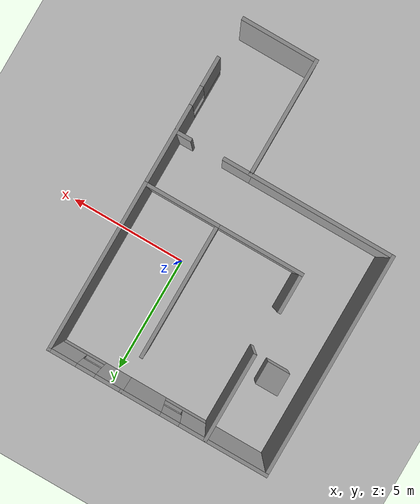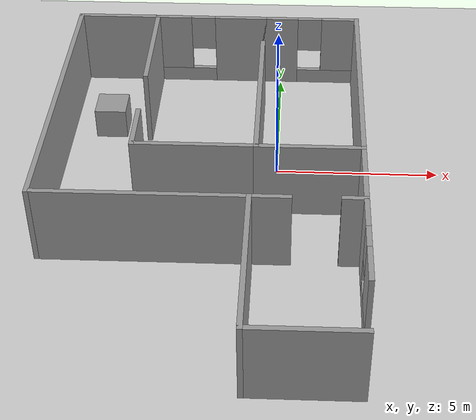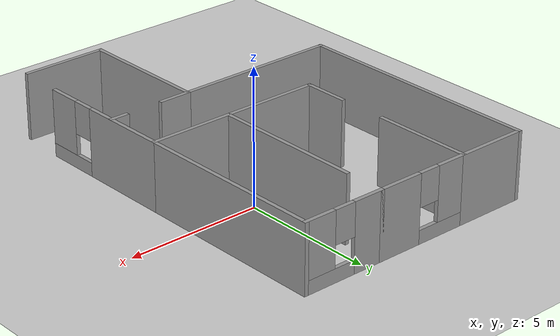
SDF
<sdf version='1.6'>
  <world name='default'>
      <plugin name='ardupilot_sitl_gazebo_plugin' filename='libardupilot_sitl_gazebo_plugin_rover.so'>
      <UAV_MODEL>rover</UAV_MODEL>
    </plugin>
    <light name='sun' type='directional'>
      <cast_shadows>1</cast_shadows>
      <pose frame=''>0 0 10 0 -0 0</pose>
      <diffuse>0.8 0.8 0.8 1</diffuse>
      <specular>0.2 0.2 0.2 1</specular>
      <attenuation>
        <range>1000</range>
        <constant>0.9</constant>
        <linear>0.01</linear>
        <quadratic>0.001</quadratic>
      </attenuation>
      <direction>-0.5 0.1 -0.9</direction>
    </light>
    <model name='ground_plane'>
      <static>1</static>
      <link name='link'>
        <collision name='collision'>
          <geometry>
            <plane>
              <normal>0 0 1</normal>
              <size>100 100</size>
            </plane>
          </geometry>
          <surface>
            <friction>
              <ode>
                <mu>100</mu>
                <mu2>50</mu2>
              </ode>
              <torsional>
                <ode/>
              </torsional>
            </friction>
            <contact>
              <ode/>
            </contact>
            <bounce/>
          </surface>
          <max_contacts>10</max_contacts>
        </collision>
        <visual name='visual'>
          <cast_shadows>0</cast_shadows>
          <geometry>
            <plane>
              <normal>0 0 1</normal>
              <size>100 100</size>
            </plane>
          </geometry>
          <material>
            <script>
              <uri>file://media/materials/scripts/gazebo.material</uri>
              <name>Gazebo/Grey</name>
            </script>
          </material>
        </visual>
        <self_collide>0</self_collide>
        <kinematic>0</kinematic>
      </link>
    </model>
    <gravity>0 0 -9.8</gravity>
    <magnetic_field>6e-06 2.3e-05 -4.2e-05</magnetic_field>
    <atmosphere type='adiabatic'/>
    <physics name='default_physics' default='0' type='ode'>
      <max_step_size>0.001</max_step_size>
      <real_time_factor>1</real_time_factor>
      <real_time_update_rate>1000</real_time_update_rate>
    </physics>
    <scene>
      <ambient>0.4 0.4 0.4 1</ambient>
      <background>0.7 0.7 0.7 1</background>
      <shadows>1</shadows>
    </scene>
    <spherical_coordinates>
      <surface_model>EARTH_WGS84</surface_model>
      <latitude_deg>0</latitude_deg>
      <longitude_deg>0</longitude_deg>
      <elevation>0</elevation>
      <heading_deg>0</heading_deg>
    </spherical_coordinates>

    <gui fullscreen='0'>
      <camera name='user_camera'>
        <pose frame=''>-1.46233 -2.64601 20.7279 -0 1.3978 1.38277</pose>
        <view_controller>orbit</view_controller>
        <projection_type>perspective</projection_type>
      </camera>
    </gui>
    <light name='user_spot_light_0' type='spot'>
      <pose frame=''>-0.306586 0.227094 1 0 -0 0</pose>
      <diffuse>0.5 0.5 0.5 1</diffuse>
      <specular>0.1 0.1 0.1 1</specular>
      <direction>0 0 -1</direction>
      <attenuation>
        <range>20</range>
        <constant>0.5</constant>
        <linear>0.01</linear>
        <quadratic>0.001</quadratic>
      </attenuation>
      <cast_shadows>0</cast_shadows>
      <spot>
        <inner_angle>0.6</inner_angle>
        <outer_angle>1</outer_angle>
        <falloff>1</falloff>
      </spot>
    </light>
    <model name='small_building'>
      <pose frame=''>-2.13424 -1.93193 0 0 -0 1.570796</pose>
      <link name='Wall_14'>
        <pose frame=''>7.1 -3.1 0 0 0 -1.5708</pose>
        <visual name='Wall_14_Visual_0'>
          <pose frame=''>-1.01794 0 1.25 0 -0 0</pose>
          <geometry>
            <box>
              <size>1.21412 0.15 2.5</size>
            </box>
          </geometry>
          <material>
            <script>
              <uri>file://media/materials/scripts/gazebo.material</uri>
              <name>Gazebo/Grey</name>
            </script>
            <ambient>1 1 1 1</ambient>
          </material>
          <meta>
            <layer>0</layer>
          </meta>
        </visual>
        <collision name='Wall_14_Collision_0'>
          <geometry>
            <box>
              <size>1.21412 0.15 2.5</size>
            </box>
          </geometry>
          <pose frame=''>-1.01794 0 1.25 0 -0 0</pose>
          <max_contacts>10</max_contacts>
          <surface>
            <contact>
              <ode/>
            </contact>
            <bounce/>
            <friction>
              <torsional>
                <ode/>
              </torsional>
              <ode/>
            </friction>
          </surface>
        </collision>
        <visual name='Wall_14_Visual_1'>
          <pose frame=''>0.607063 0 0.25 0 -0 0</pose>
          <geometry>
            <box>
              <size>2.03587 0.15 0.5</size>
            </box>
          </geometry>
          <material>
            <script>
              <uri>file://media/materials/scripts/gazebo.material</uri>
              <name>Gazebo/Grey</name>
            </script>
            <ambient>1 1 1 1</ambient>
          </material>
          <meta>
            <layer>0</layer>
          </meta>
        </visual>
        <collision name='Wall_14_Collision_1'>
          <geometry>
            <box>
              <size>2.03587 0.15 0.5</size>
            </box>
          </geometry>
          <pose frame=''>0.607063 0 0.25 0 -0 0</pose>
          <max_contacts>10</max_contacts>
          <surface>
            <contact>
              <ode/>
            </contact>
            <bounce/>
            <friction>
              <torsional>
                <ode/>
              </torsional>
              <ode/>
            </friction>
          </surface>
        </collision>
        <visual name='Wall_14_Visual_2'>
          <pose frame=''>1.00706 0 1.5 0 -0 0</pose>
          <geometry>
            <box>
              <size>1.23588 0.15 2</size>
            </box>
          </geometry>
          <material>
            <script>
              <uri>file://media/materials/scripts/gazebo.material</uri>
              <name>Gazebo/Grey</name>
            </script>
            <ambient>1 1 1 1</ambient>
          </material>
          <meta>
            <layer>0</layer>
          </meta>
        </visual>
        <collision name='Wall_14_Collision_2'>
          <geometry>
            <box>
              <size>1.23588 0.15 2</size>
            </box>
          </geometry>
          <pose frame=''>1.00706 0 1.5 0 -0 0</pose>
          <max_contacts>10</max_contacts>
          <surface>
            <contact>
              <ode/>
            </contact>
            <bounce/>
            <friction>
              <torsional>
                <ode/>
              </torsional>
              <ode/>
            </friction>
          </surface>
        </collision>
        <visual name='Wall_14_Visual_3'>
          <pose frame=''>-0.010875 0 1.9 0 -0 0</pose>
          <geometry>
            <box>
              <size>0.8 0.15 1.2</size>
            </box>
          </geometry>
          <material>
            <script>
              <uri>file://media/materials/scripts/gazebo.material</uri>
              <name>Gazebo/Grey</name>
            </script>
            <ambient>1 1 1 1</ambient>
          </material>
          <meta>
            <layer>0</layer>
          </meta>
        </visual>
        <collision name='Wall_14_Collision_3'>
          <geometry>
            <box>
              <size>0.8 0.15 1.2</size>
            </box>
          </geometry>
          <pose frame=''>-0.010875 0 1.9 0 -0 0</pose>
          <max_contacts>10</max_contacts>
          <surface>
            <contact>
              <ode/>
            </contact>
            <bounce/>
            <friction>
              <torsional>
                <ode/>
              </torsional>
              <ode/>
            </friction>
          </surface>
        </collision>
        <self_collide>0</self_collide>
        <kinematic>0</kinematic>
      </link>
      <link name='Wall_15'>
        <collision name='Wall_15_Collision'>
          <geometry>
            <box>
              <size>7.25 0.15 2.5</size>
            </box>
          </geometry>
          <pose frame=''>0 0 1.25 0 -0 0</pose>
          <max_contacts>10</max_contacts>
          <surface>
            <contact>
              <ode/>
            </contact>
            <bounce/>
            <friction>
              <torsional>
                <ode/>
              </torsional>
              <ode/>
            </friction>
          </surface>
        </collision>
        <visual name='Wall_15_Visual'>
          <pose frame=''>0 0 1.25 0 -0 0</pose>
          <geometry>
            <box>
              <size>7.25 0.15 2.5</size>
            </box>
          </geometry>
          <material>
            <script>
              <uri>file://media/materials/scripts/gazebo.material</uri>
              <name>Gazebo/Grey</name>
            </script>
            <ambient>1 1 1 1</ambient>
          </material>
          <meta>
            <layer>0</layer>
          </meta>
        </visual>
        <pose frame=''>3.55 -4.65 0 0 -0 3.14159</pose>
        <self_collide>0</self_collide>
        <kinematic>0</kinematic>
      </link>
      <link name='Wall_16'>
        <collision name='Wall_16_Collision'>
          <geometry>
            <box>
              <size>3.25 0.15 2.5</size>
            </box>
          </geometry>
          <pose frame=''>0 0 1.25 0 -0 0</pose>
          <max_contacts>10</max_contacts>
          <surface>
            <contact>
              <ode/>
            </contact>
            <bounce/>
            <friction>
              <torsional>
                <ode/>
              </torsional>
              <ode/>
            </friction>
          </surface>
        </collision>
        <visual name='Wall_16_Visual'>
          <pose frame=''>0 0 1.25 0 -0 0</pose>
          <geometry>
            <box>
              <size>3.25 0.15 2.5</size>
            </box>
          </geometry>
          <material>
            <script>
              <uri>file://media/materials/scripts/gazebo.material</uri>
              <name>Gazebo/Grey</name>
            </script>
            <ambient>1 1 1 1</ambient>
          </material>
          <meta>
            <layer>0</layer>
          </meta>
        </visual>
        <pose frame=''>-0 -3.1 0 0 -0 1.5708</pose>
        <self_collide>0</self_collide>
        <kinematic>0</kinematic>
      </link>
      <link name='Wall_17'>
        <collision name='Wall_17_Collision'>
          <geometry>
            <box>
              <size>5.75 0.15 2.5</size>
            </box>
          </geometry>
          <pose frame=''>0 0 1.25 0 -0 0</pose>
          <max_contacts>10</max_contacts>
          <surface>
            <contact>
              <ode/>
            </contact>
            <bounce/>
            <friction>
              <torsional>
                <ode/>
              </torsional>
              <ode/>
            </friction>
          </surface>
        </collision>
        <visual name='Wall_17_Visual'>
          <pose frame=''>0 0 1.25 0 -0 0</pose>
          <geometry>
            <box>
              <size>5.75 0.15 2.5</size>
            </box>
          </geometry>
          <material>
            <script>
              <uri>file://media/materials/scripts/gazebo.material</uri>
              <name>Gazebo/Grey</name>
            </script>
            <ambient>1 1 1 1</ambient>
          </material>
          <meta>
            <layer>0</layer>
          </meta>
        </visual>
        <pose frame=''>2.8 -1.55 0 0 -0 0</pose>
        <self_collide>0</self_collide>
        <kinematic>0</kinematic>
      </link>
      <link name='Wall_19'>
        <pose frame=''>7.1 0.25 0 0 -0 1.5708</pose>
        <visual name='Wall_19_Visual_0'>
          <pose frame=''>-1.00559 0 1.25 0 -0 0</pose>
          <geometry>
            <box>
              <size>1.73883 0.15 2.5</size>
            </box>
          </geometry>
          <material>
            <script>
              <uri>file://media/materials/scripts/gazebo.material</uri>
              <name>Gazebo/Grey</name>
            </script>
            <ambient>1 1 1 1</ambient>
          </material>
          <meta>
            <layer>0</layer>
          </meta>
        </visual>
        <collision name='Wall_19_Collision_0'>
          <geometry>
            <box>
              <size>1.73883 0.15 2.5</size>
            </box>
          </geometry>
          <pose frame=''>-1.00559 0 1.25 0 -0 0</pose>
          <max_contacts>10</max_contacts>
          <surface>
            <contact>
              <ode/>
            </contact>
            <bounce/>
            <friction>
              <torsional>
                <ode/>
              </torsional>
              <ode/>
            </friction>
          </surface>
        </collision>
        <visual name='Wall_19_Visual_1'>
          <pose frame=''>0.869414 0 0.25 0 -0 0</pose>
          <geometry>
            <box>
              <size>2.01117 0.15 0.5</size>
            </box>
          </geometry>
          <material>
            <script>
              <uri>file://media/materials/scripts/gazebo.material</uri>
              <name>Gazebo/Grey</name>
            </script>
            <ambient>1 1 1 1</ambient>
          </material>
          <meta>
            <layer>0</layer>
          </meta>
        </visual>
        <collision name='Wall_19_Collision_1'>
          <geometry>
            <box>
              <size>2.01117 0.15 0.5</size>
            </box>
          </geometry>
          <pose frame=''>0.869414 0 0.25 0 -0 0</pose>
          <max_contacts>10</max_contacts>
          <surface>
            <contact>
              <ode/>
            </contact>
            <bounce/>
            <friction>
              <torsional>
                <ode/>
              </torsional>
              <ode/>
            </friction>
          </surface>
        </collision>
        <visual name='Wall_19_Visual_2'>
          <pose frame=''>1.26941 0 1.5 0 -0 0</pose>
          <geometry>
            <box>
              <size>1.21117 0.15 2</size>
            </box>
          </geometry>
          <material>
            <script>
              <uri>file://media/materials/scripts/gazebo.material</uri>
              <name>Gazebo/Grey</name>
            </script>
            <ambient>1 1 1 1</ambient>
          </material>
          <meta>
            <layer>0</layer>
          </meta>
        </visual>
        <collision name='Wall_19_Collision_2'>
          <geometry>
            <box>
              <size>1.21117 0.15 2</size>
            </box>
          </geometry>
          <pose frame=''>1.26941 0 1.5 0 -0 0</pose>
          <max_contacts>10</max_contacts>
          <surface>
            <contact>
              <ode/>
            </contact>
            <bounce/>
            <friction>
              <torsional>
                <ode/>
              </torsional>
              <ode/>
            </friction>
          </surface>
        </collision>
        <visual name='Wall_19_Visual_3'>
          <pose frame=''>0.263827 0 1.9 0 -0 0</pose>
          <geometry>
            <box>
              <size>0.8 0.15 1.2</size>
            </box>
          </geometry>
          <material>
            <script>
              <uri>file://media/materials/scripts/gazebo.material</uri>
              <name>Gazebo/Grey</name>
            </script>
            <ambient>1 1 1 1</ambient>
          </material>
          <meta>
            <layer>0</layer>
          </meta>
        </visual>
        <collision name='Wall_19_Collision_3'>
          <geometry>
            <box>
              <size>0.8 0.15 1.2</size>
            </box>
          </geometry>
          <pose frame=''>0.263827 0 1.9 0 -0 0</pose>
          <max_contacts>10</max_contacts>
          <surface>
            <contact>
              <ode/>
            </contact>
            <bounce/>
            <friction>
              <torsional>
                <ode/>
              </torsional>
              <ode/>
            </friction>
          </surface>
        </collision>
        <self_collide>0</self_collide>
        <kinematic>0</kinematic>
      </link>
      <link name='Wall_20'>
        <collision name='Wall_20_Collision'>
          <geometry>
            <box>
              <size>3.75 0.15 2.5</size>
            </box>
          </geometry>
          <pose frame=''>0 0 1.25 0 -0 0</pose>
          <max_contacts>10</max_contacts>
          <surface>
            <contact>
              <ode/>
            </contact>
            <bounce/>
            <friction>
              <torsional>
                <ode/>
              </torsional>
              <ode/>
            </friction>
          </surface>
        </collision>
        <visual name='Wall_20_Visual'>
          <pose frame=''>0 0 1.25 0 -0 0</pose>
          <geometry>
            <box>
              <size>3.75 0.15 2.5</size>
            </box>
          </geometry>
          <material>
            <script>
              <uri>file://media/materials/scripts/gazebo.material</uri>
              <name>Gazebo/Grey</name>
            </script>
            <ambient>1 1 1 1</ambient>
          </material>
          <meta>
            <layer>0</layer>
          </meta>
        </visual>
        <pose frame=''>5.3 2.05 0 0 -0 3.14159</pose>
        <self_collide>0</self_collide>
        <kinematic>0</kinematic>
      </link>
      <link name='Wall_22'>
        <collision name='Wall_22_Collision'>
          <geometry>
            <box>
              <size>3.75 0.15 2.5</size>
            </box>
          </geometry>
          <pose frame=''>0 0 1.25 0 -0 0</pose>
          <max_contacts>10</max_contacts>
          <surface>
            <contact>
              <ode/>
            </contact>
            <bounce/>
            <friction>
              <torsional>
                <ode/>
              </torsional>
              <ode/>
            </friction>
          </surface>
        </collision>
        <visual name='Wall_22_Visual'>
          <pose frame=''>0 0 1.25 0 -0 0</pose>
          <geometry>
            <box>
              <size>3.75 0.15 2.5</size>
            </box>
          </geometry>
          <material>
            <script>
              <uri>file://media/materials/scripts/gazebo.material</uri>
              <name>Gazebo/Grey</name>
            </script>
            <ambient>1 1 1 1</ambient>
          </material>
          <meta>
            <layer>0</layer>
          </meta>
        </visual>
        <pose frame=''>-0 0.25 0 0 -0 1.5708</pose>
        <self_collide>0</self_collide>
        <kinematic>0</kinematic>
      </link>
      <link name='Wall_23'>
        <collision name='Wall_23_Collision'>
          <geometry>
            <box>
              <size>1.75 0.15 2.5</size>
            </box>
          </geometry>
          <pose frame=''>0 0 1.25 0 -0 0</pose>
          <max_contacts>10</max_contacts>
          <surface>
            <contact>
              <ode/>
            </contact>
            <bounce/>
            <friction>
              <torsional>
                <ode/>
              </torsional>
              <ode/>
            </friction>
          </surface>
        </collision>
        <visual name='Wall_23_Visual'>
          <pose frame=''>0 0 1.25 0 -0 0</pose>
          <geometry>
            <box>
              <size>1.75 0.15 2.5</size>
            </box>
          </geometry>
          <material>
            <script>
              <uri>file://media/materials/scripts/gazebo.material</uri>
              <name>Gazebo/Grey</name>
            </script>
            <ambient>1 1 1 1</ambient>
          </material>
          <meta>
            <layer>0</layer>
          </meta>
        </visual>
        <pose frame=''>0.8 2.05 0 0 -0 0</pose>
        <self_collide>0</self_collide>
        <kinematic>0</kinematic>
      </link>
      <link name='Wall_25'>
        <collision name='Wall_25_Collision'>
          <geometry>
            <box>
              <size>2.75 0.15 2.5</size>
            </box>
          </geometry>
          <pose frame=''>0 0 1.25 0 -0 0</pose>
          <max_contacts>10</max_contacts>
          <surface>
            <contact>
              <ode/>
            </contact>
            <bounce/>
            <friction>
              <torsional>
                <ode/>
              </torsional>
              <ode/>
            </friction>
          </surface>
        </collision>
        <visual name='Wall_25_Visual'>
          <pose frame=''>0 0 1.25 0 -0 0</pose>
          <geometry>
            <box>
              <size>2.75 0.15 2.5</size>
            </box>
          </geometry>
          <material>
            <script>
              <uri>file://media/materials/scripts/gazebo.material</uri>
              <name>Gazebo/Grey</name>
            </script>
            <ambient>1 1 1 1</ambient>
          </material>
          <meta>
            <layer>0</layer>
          </meta>
        </visual>
        <pose frame=''>7.1 3.35 0 0 -0 1.5708</pose>
        <self_collide>0</self_collide>
        <kinematic>0</kinematic>
      </link>
      <link name='Wall_26'>
        <collision name='Wall_26_Collision'>
          <geometry>
            <box>
              <size>9.5 0.15 2.5</size>
            </box>
          </geometry>
          <pose frame=''>0 0 1.25 0 -0 0</pose>
          <max_contacts>10</max_contacts>
          <surface>
            <contact>
              <ode/>
            </contact>
            <bounce/>
            <friction>
              <torsional>
                <ode/>
              </torsional>
              <ode/>
            </friction>
          </surface>
        </collision>
        <visual name='Wall_26_Visual'>
          <pose frame=''>0 0 1.25 0 -0 0</pose>
          <geometry>
            <box>
              <size>9.5 0.15 2.5</size>
            </box>
          </geometry>
          <material>
            <script>
              <uri>file://media/materials/scripts/gazebo.material</uri>
              <name>Gazebo/Grey</name>
            </script>
            <ambient>1 1 1 1</ambient>
          </material>
          <meta>
            <layer>0</layer>
          </meta>
        </visual>
        <pose frame=''>2.425 4.65 0 0 -0 3.14159</pose>
        <self_collide>0</self_collide>
        <kinematic>0</kinematic>
      </link>
      <link name='Wall_27'>
        <collision name='Wall_27_Collision'>
          <geometry>
            <box>
              <size>6.25 0.15 2.5</size>
            </box>
          </geometry>
          <pose frame=''>0 0 1.25 0 -0 0</pose>
          <max_contacts>10</max_contacts>
          <surface>
            <contact>
              <ode/>
            </contact>
            <bounce/>
            <friction>
              <torsional>
                <ode/>
              </torsional>
              <ode/>
            </friction>
          </surface>
        </collision>
        <visual name='Wall_27_Visual'>
          <pose frame=''>0 0 1.25 0 -0 0</pose>
          <geometry>
            <box>
              <size>6.25 0.15 2.5</size>
            </box>
          </geometry>
          <material>
            <script>
              <uri>file://media/materials/scripts/gazebo.material</uri>
              <name>Gazebo/Grey</name>
            </script>
            <ambient>1 1 1 1</ambient>
          </material>
          <meta>
            <layer>0</layer>
          </meta>
        </visual>
        <pose frame=''>-2.25 1.6 0 0 0 -1.5708</pose>
        <self_collide>0</self_collide>
        <kinematic>0</kinematic>
      </link>
      <link name='Wall_29'>
        <collision name='Wall_29_Collision'>
          <geometry>
            <box>
              <size>5 0.15 2.5</size>
            </box>
          </geometry>
          <pose frame=''>0 0 1.25 0 -0 0</pose>
          <max_contacts>10</max_contacts>
          <surface>
            <contact>
              <ode/>
            </contact>
            <bounce/>
            <friction>
              <torsional>
                <ode/>
              </torsional>
              <ode/>
            </friction>
          </surface>
        </collision>
        <visual name='Wall_29_Visual'>
          <pose frame=''>0 0 1.25 0 -0 0</pose>
          <geometry>
            <box>
              <size>5 0.15 2.5</size>
            </box>
          </geometry>
          <material>
            <script>
              <uri>file://media/materials/scripts/gazebo.material</uri>
              <name>Gazebo/Grey</name>
            </script>
            <ambient>1 1 1 1</ambient>
          </material>
          <meta>
            <layer>0</layer>
          </meta>
        </visual>
        <pose frame=''>-4.675 -1.45 0 0 -0 3.14159</pose>
        <self_collide>0</self_collide>
        <kinematic>0</kinematic>
      </link>
      <link name='Wall_35'>
        <pose frame=''>-2.675 -4.65 0 0 -0 3.14159</pose>
        <visual name='Wall_35_Visual_0'>
          <pose frame=''>-1.03184 0 1.25 0 -0 0</pose>
          <geometry>
            <box>
              <size>3.43633 0.15 2.5</size>
            </box>
          </geometry>
          <material>
            <script>
              <uri>file://media/materials/scripts/gazebo.material</uri>
              <name>Gazebo/Grey</name>
            </script>
            <ambient>1 1 1 1</ambient>
          </material>
          <meta>
            <layer>0</layer>
          </meta>
        </visual>
        <collision name='Wall_35_Collision_0'>
          <geometry>
            <box>
              <size>3.43633 0.15 2.5</size>
            </box>
          </geometry>
          <pose frame=''>-1.03184 0 1.25 0 -0 0</pose>
          <max_contacts>10</max_contacts>
          <surface>
            <contact>
              <ode/>
            </contact>
            <bounce/>
            <friction>
              <torsional>
                <ode/>
              </torsional>
              <ode/>
            </friction>
          </surface>
        </collision>
        <visual name='Wall_35_Visual_1'>
          <pose frame=''>1.71816 0 0.25 0 -0 0</pose>
          <geometry>
            <box>
              <size>2.06367 0.15 0.5</size>
            </box>
          </geometry>
          <material>
            <script>
              <uri>file://media/materials/scripts/gazebo.material</uri>
              <name>Gazebo/Grey</name>
            </script>
            <ambient>1 1 1 1</ambient>
          </material>
          <meta>
            <layer>0</layer>
          </meta>
        </visual>
        <collision name='Wall_35_Collision_1'>
          <geometry>
            <box>
              <size>2.06367 0.15 0.5</size>
            </box>
          </geometry>
          <pose frame=''>1.71816 0 0.25 0 -0 0</pose>
          <max_contacts>10</max_contacts>
          <surface>
            <contact>
              <ode/>
            </contact>
            <bounce/>
            <friction>
              <torsional>
                <ode/>
              </torsional>
              <ode/>
            </friction>
          </surface>
        </collision>
        <visual name='Wall_35_Visual_2'>
          <pose frame=''>2.11816 0 1.5 0 -0 0</pose>
          <geometry>
            <box>
              <size>1.26367 0.15 2</size>
            </box>
          </geometry>
          <material>
            <script>
              <uri>file://media/materials/scripts/gazebo.material</uri>
              <name>Gazebo/Grey</name>
            </script>
            <ambient>1 1 1 1</ambient>
          </material>
          <meta>
            <layer>0</layer>
          </meta>
        </visual>
        <collision name='Wall_35_Collision_2'>
          <geometry>
            <box>
              <size>1.26367 0.15 2</size>
            </box>
          </geometry>
          <pose frame=''>2.11816 0 1.5 0 -0 0</pose>
          <max_contacts>10</max_contacts>
          <surface>
            <contact>
              <ode/>
            </contact>
            <bounce/>
            <friction>
              <torsional>
                <ode/>
              </torsional>
              <ode/>
            </friction>
          </surface>
        </collision>
        <visual name='Wall_35_Visual_3'>
          <pose frame=''>1.08633 0 1.9 0 -0 0</pose>
          <geometry>
            <box>
              <size>0.8 0.15 1.2</size>
            </box>
          </geometry>
          <material>
            <script>
              <uri>file://media/materials/scripts/gazebo.material</uri>
              <name>Gazebo/Grey</name>
            </script>
            <ambient>1 1 1 1</ambient>
          </material>
          <meta>
            <layer>0</layer>
          </meta>
        </visual>
        <collision name='Wall_35_Collision_3'>
          <geometry>
            <box>
              <size>0.8 0.15 1.2</size>
            </box>
          </geometry>
          <pose frame=''>1.08633 0 1.9 0 -0 0</pose>
          <max_contacts>10</max_contacts>
          <surface>
            <contact>
              <ode/>
            </contact>
            <bounce/>
            <friction>
              <torsional>
                <ode/>
              </torsional>
              <ode/>
            </friction>
          </surface>
        </collision>
        <self_collide>0</self_collide>
        <kinematic>0</kinematic>
      </link>
      <link name='Wall_37'>
        <collision name='Wall_37_Collision'>
          <geometry>
            <box>
              <size>1.25 0.15 2.5</size>
            </box>
          </geometry>
          <pose frame=''>0 0 1.25 0 -0 0</pose>
          <max_contacts>10</max_contacts>
          <surface>
            <contact>
              <ode/>
            </contact>
            <bounce/>
            <friction>
              <torsional>
                <ode/>
              </torsional>
              <ode/>
            </friction>
          </surface>
        </collision>
        <visual name='Wall_37_Visual'>
          <pose frame=''>0 0 1.25 0 -0 0</pose>
          <geometry>
            <box>
              <size>1.25 0.15 2.5</size>
            </box>
          </geometry>
          <material>
            <script>
              <uri>file://media/materials/scripts/gazebo.material</uri>
              <name>Gazebo/Grey</name>
            </script>
            <ambient>1 1 1 1</ambient>
          </material>
          <meta>
            <layer>0</layer>
          </meta>
        </visual>
        <pose frame=''>-2.25 -2 0 0 0 -1.5708</pose>
        <self_collide>0</self_collide>
        <kinematic>0</kinematic>
      </link>
      <link name='Wall_39'>
        <collision name='Wall_39_Collision'>
          <geometry>
            <box>
              <size>0.75 0.15 2.5</size>
            </box>
          </geometry>
          <pose frame=''>0 0 1.25 0 -0 0</pose>
          <max_contacts>10</max_contacts>
          <surface>
            <contact>
              <ode/>
            </contact>
            <bounce/>
            <friction>
              <torsional>
                <ode/>
              </torsional>
              <ode/>
            </friction>
          </surface>
        </collision>
        <visual name='Wall_39_Visual'>
          <pose frame=''>0 0 1.25 0 -0 0</pose>
          <geometry>
            <box>
              <size>0.75 0.15 2.5</size>
            </box>
          </geometry>
          <material>
            <script>
              <uri>file://media/materials/scripts/gazebo.material</uri>
              <name>Gazebo/Grey</name>
            </script>
            <ambient>1 1 1 1</ambient>
          </material>
          <meta>
            <layer>0</layer>
          </meta>
        </visual>
        <pose frame=''>-2.23969 -4.34574 0 0 -0 1.5708</pose>
        <self_collide>0</self_collide>
        <kinematic>0</kinematic>
      </link>
      <link name='Wall_41'>
        <collision name='Wall_41_Collision'>
          <geometry>
            <box>
              <size>3.25 0.15 2.5</size>
            </box>
          </geometry>
          <pose frame=''>0 0 1.25 0 -0 0</pose>
          <max_contacts>10</max_contacts>
          <surface>
            <contact>
              <ode/>
            </contact>
            <bounce/>
            <friction>
              <torsional>
                <ode/>
              </torsional>
              <ode/>
            </friction>
          </surface>
        </collision>
        <visual name='Wall_41_Visual'>
          <pose frame=''>0 0 1.25 0 -0 0</pose>
          <geometry>
            <box>
              <size>3.25 0.15 2.5</size>
            </box>
          </geometry>
          <material>
            <script>
              <uri>file://media/materials/scripts/gazebo.material</uri>
              <name>Gazebo/Grey</name>
            </script>
            <ambient>1 1 1 1</ambient>
          </material>
          <meta>
            <layer>0</layer>
          </meta>
        </visual>
        <pose frame=''>-7.1 -3 0 0 0 -1.5708</pose>
        <self_collide>0</self_collide>
        <kinematic>0</kinematic>
      </link>
      <static>1</static>
    </model>

    <!-- This box is blocking the dead end hallway to avoid trapping the rover -->
    <model name='unit_box'>
      <pose frame=''>-5.44598 2.14541 0.5 0 -0 0</pose>
      <link name='link'>
        <inertial>
          <mass>1</mass>
          <inertia>
            <ixx>0.166667</ixx>
            <ixy>0</ixy>
            <ixz>0</ixz>
            <iyy>0.166667</iyy>
            <iyz>0</iyz>
            <izz>0.166667</izz>
          </inertia>
        </inertial>
        <collision name='collision'>
          <geometry>
            <box>
              <size>1 1 1</size>
            </box>
          </geometry>
          <max_contacts>10</max_contacts>
          <surface>
            <contact>
              <ode/>
            </contact>
            <bounce/>
            <friction>
              <torsional>
                <ode/>
              </torsional>
              <ode/>
            </friction>
          </surface>
        </collision>
        <visual name='visual'>
          <geometry>
            <box>
              <size>1 1 1</size>
            </box>
          </geometry>
          <material>
            <script>
              <name>Gazebo/Grey</name>
              <uri>file://media/materials/scripts/gazebo.material</uri>
            </script>
          </material>
        </visual>
        <self_collide>0</self_collide>
        <kinematic>0</kinematic>
      </link>
    </model>

    <!-- Pluggin for settin regions that will detect whether the rover is in it or no -->
	<plugin filename="libSimEventsPlugin.so" name="event_plugin">
	<region>
	    <name>bowl_room</name>
	    <volume>
	      <min>-0.41122 -1.735 -1</min>
	      <max>2.34 4.99 1</max>
	    </volume>
	 </region>
	 <event>
	    <name>bowl_room_event</name>
	    <type>occupied</type>
	    <region>bowl_room</region>
	    <topic>~/region</topic>
	    <msg_data>bowl_room</msg_data>
	  </event>

	<region>
	    <name>coke_room</name>
	    <volume>
	      <min>-3.99 -1.75 -1</min>
	      <max>-0.7877 5.01 1</max>
	    </volume>
	 </region>
	  <event>
	    <name>coke_room_event</name>
	    <type>occupied</type>
	    <region>coke_room</region>
	    <topic>~/region</topic>
	    <msg_data>coke_room</msg_data>
	  </event>

	 <region>
	    <name>hallway_1</name>
	    <volume>
	      <min>-6.4827 -3.9639 -1</min>
	      <max>-4.4465 1.3878 1</max>
	    </volume>
	 </region>
	 <event>
	    <name>hallway_1_event</name>
	    <type>occupied</type>
	    <region>hallway_1</region>
	    <topic>~/region</topic>
	    <msg_data>hallway_1</msg_data>
	  </event>

	<region>
	    <name>hallway_2</name>
	    <volume>
	      <min>-4.1331 -3.88 -1</min>
	      <max>2.168302 -2.185588 1</max>
	    </volume>
	 </region>
	 <event>
	    <name>hallway_2_event</name>
	    <type>occupied</type>
	    <region>hallway_2</region>
	    <topic>~/region</topic>
	    <msg_data>hallway_2</msg_data>
	  </event>

	<region>
	    <name>beer_room</name>
	    <volume>
	      <min>-0.48979 -8.89 -1</min>
	      <max>2.375 -4.3 1</max>
	    </volume>
	 </region>
	 <event>
	    <name>beer_room_event</name>
	    <type>occupied</type>
	    <region>beer_room</region>
	    <topic>~/region</topic>
	    <msg_data>beer_room</msg_data>
	  </event>

	<region>
	    <name>maze_exit</name>
	    <volume>
	      <min>2.5 -8.86 -1</min>
	      <max>3.5 -7.38 1</max>
	    </volume>
	 </region>
	 <event>
	    <name>maze_exit_event</name>
	    <type>occupied</type>
	    <region>maze_exit</region>
	    <topic>~/region</topic>
	    <msg_data>exited_the_maze</msg_data>
	  </event>
	</plugin>

  </world>
</sdf>
